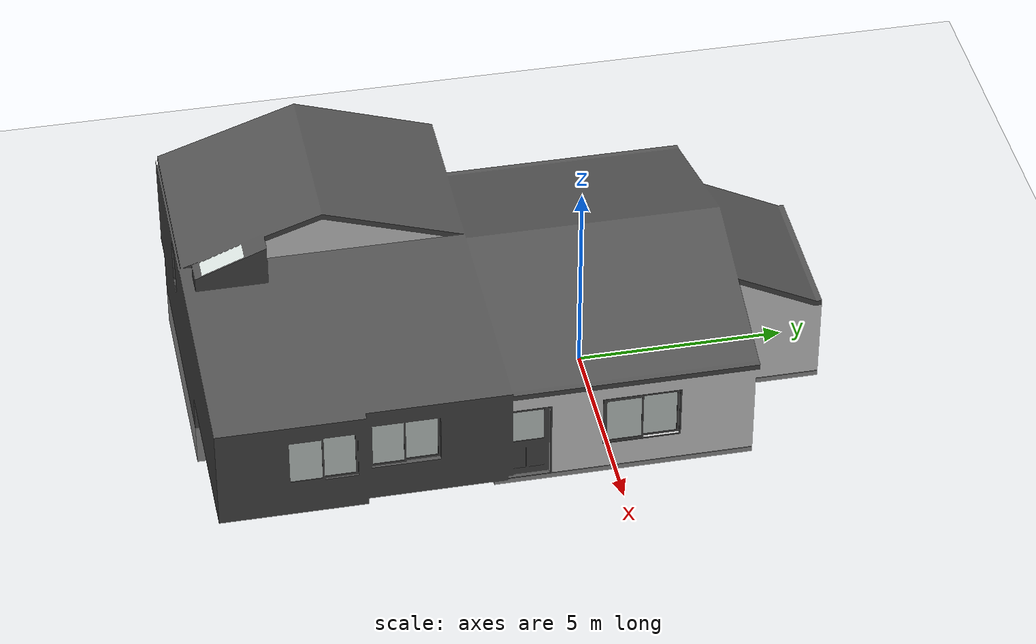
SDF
<sdf version="1.7">
 <world name="default">
  <light name="sun" type="directional">
   <pose>0 0 10 0 -0 0</pose>
   <diffuse>0.8 0.8 0.8 1</diffuse>
   <specular>0.2 0.2 0.2 1</specular>
   <attenuation>
    <range>1000</range>
    <constant>0.9</constant>
    <linear>0.01</linear>
    <quadratic>0.001</quadratic>
   </attenuation>
   <direction>-0.5 0.1 -0.9</direction>
   <spot><inner_angle>0</inner_angle><outer_angle>0</outer_angle><falloff>0</falloff></spot>
  </light>
  <model name="ground_plane">
   <static>1</static>
   <link name="link">
    <collision name="collision">
     <geometry><plane><normal>0 0 1</normal><size>100 100</size></plane></geometry>
     <surface>
      <contact><collide_bitmask>65535</collide_bitmask></contact>
      <friction><ode><mu>1000</mu><mu2>500</mu2></ode></friction>
     </surface>
    </collision>
    <visual name="visual">
     <cast_shadows>0</cast_shadows>
     <geometry><plane><normal>0 0 1</normal><size>100 100</size></plane></geometry>
     <material>
      <script><uri>file://media/materials/scripts/gazebo.material</uri><name>Gazebo/Grey</name></script>
     </material>
    </visual>
   </link>
  </model>
  <gravity>0 0 -9.8</gravity>
  <magnetic_field>6e-06 2.3e-05 -4.2e-05</magnetic_field>
  <atmosphere type="adiabatic"/>
  <physics type="ode">
   <max_step_size>0.001</max_step_size>
   <real_time_factor>1</real_time_factor>
   <real_time_update_rate>1000</real_time_update_rate>
  </physics>
  <scene><ambient>0.4 0.4 0.4 1</ambient><background>0.7 0.7 0.7 1</background><shadows>1</shadows></scene>
  <spherical_coordinates>
   <surface_model>EARTH_WGS84</surface_model>
   <latitude_deg>0</latitude_deg>
   <longitude_deg>0</longitude_deg>
   <elevation>0</elevation>
   <heading_deg>0</heading_deg>
  </spherical_coordinates>
  <model name="Home">
   <link name="link_0">
    <inertial>
     <mass>1</mass>
     <inertia>
      <ixx>0.166667</ixx>
      <ixy>0</ixy>
      <ixz>0</ixz>
      <iyy>0.166667</iyy>
      <iyz>0</iyz>
      <izz>0.166667</izz>
     </inertia>
    </inertial>
    <pose>-3e-06 -0 0 0 -0 0</pose>
    <visual name="visual">
     <geometry>
      <mesh><uri>/home/po-lun/mmtest_ws/src/mm3/meshes/Scan 1/Scan 1.dae</uri><scale>1 1 1</scale></mesh>
     </geometry>
    </visual>
    <collision name="collision">
     <geometry>
      <mesh><uri>/home/po-lun/mmtest_ws/src/mm3/meshes/Scan 1/Scan 1.dae</uri><scale>1 1 1</scale></mesh>
     </geometry>
     <surface>
      <friction><ode><mu>1000</mu><mu2>500</mu2></ode></friction>
      <bounce><restitution_coefficient>0</restitution_coefficient><threshold>1e+06</threshold></bounce>
      <contact>
       <collide_without_contact>0</collide_without_contact>
       <collide_without_contact_bitmask>1</collide_without_contact_bitmask>
       <collide_bitmask>1</collide_bitmask>
       <ode>
        <soft_cfm>0</soft_cfm>
        <soft_erp>0.2</soft_erp>
        <kp>1e+13</kp>
        <kd>1</kd>
        <max_vel>0.01</max_vel>
        <min_depth>0</min_depth>
       </ode>
       <bullet>
        <split_impulse>1</split_impulse>
        <split_impulse_penetration_threshold>-0.01</split_impulse_penetration_threshold>
        <soft_cfm>0</soft_cfm>
        <soft_erp>0.2</soft_erp>
        <kp>1e+13</kp>
        <kd>1</kd>
       </bullet>
      </contact>
     </surface>
    </collision>
   </link>
   <static>1</static>
   <pose>-2.20925 5.5474 0 0 -0 0</pose>
  </model>
 </world>
</sdf>
